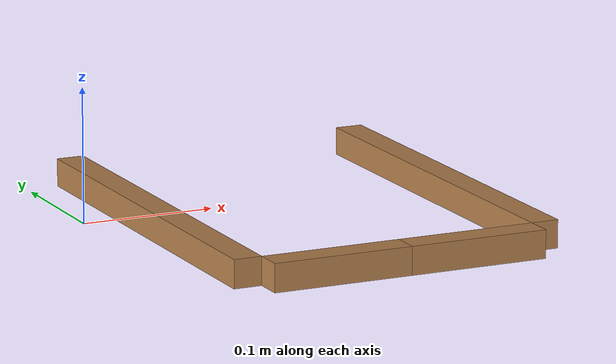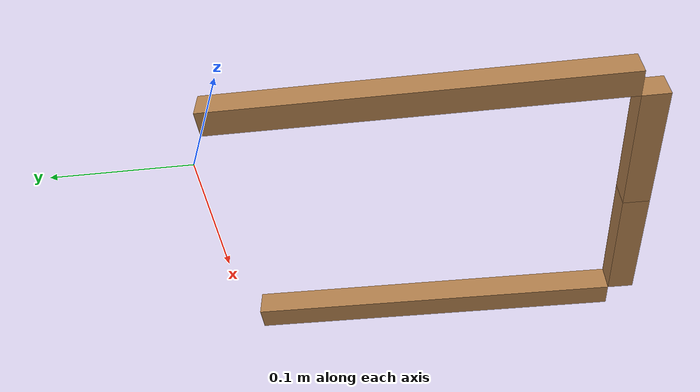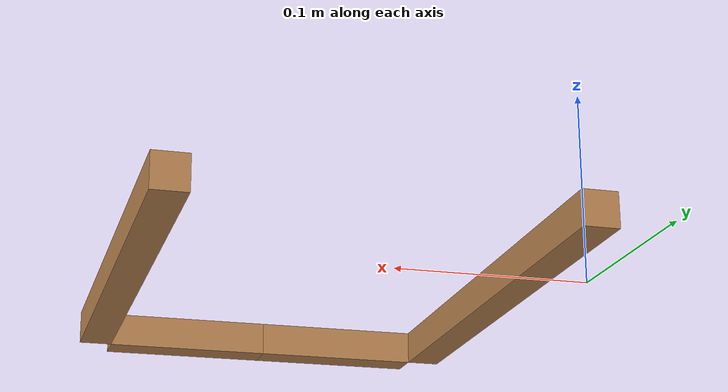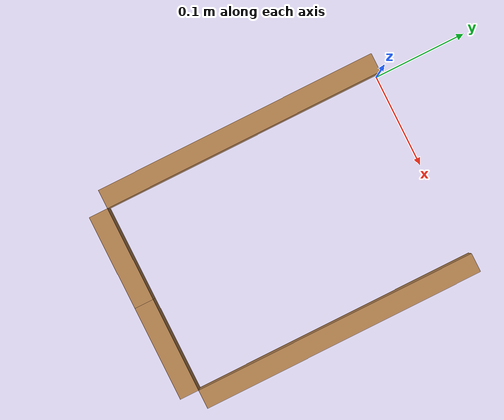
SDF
<?xml version="1.0" ?>
<sdf version="1.5">
  <model name="four_bar_sdf">
    <pose>0 0 0.04  0 0 0</pose>
    <self_collide>true</self_collide>
    <link name="link_AB">
      <pose>-0.01 -0.15000000000000002 0  0 0 0</pose>
      <inertial>
        <mass>0.07200000000000001</mass>
        <inertia>
          <ixx>0.0005424000000000002</ixx>
          <iyy>4.800000000000001e-06</iyy>
          <izz>0.0005424000000000002</izz>
          <ixy>0.0</ixy>
          <ixz>0.0</ixz>
          <iyz>0.0</iyz>
        </inertia>
      </inertial>
      <collision name="boxABCollision">
        <geometry>
          <box>
            <size>0.02 0.30000000000000004 0.02</size>
          </box>
        </geometry>
      </collision>
      <visual name="boxABVisual">
        <geometry>
          <box>
            <size>0.02 0.30000000000000004 0.02</size>
          </box>
        </geometry>
        <material>
          <script>
            <uri>file://media/materials/scripts/gazebo.material</uri>
            <name>Gazebo/Wood</name>
          </script>
        </material>
      </visual>
    </link>
    <link name="link_BE">
      <pose>0.05 -0.31000000000000005 0  0 0 0</pose>
      <inertial>
        <mass>0.024</mass>
        <inertia>
          <ixx>1.6000000000000001e-06</ixx>
          <iyy>2.0800000000000004e-05</iyy>
          <izz>2.0800000000000004e-05</izz>
          <ixy>0.0</ixy>
          <ixz>0.0</ixz>
          <iyz>0.0</iyz>
        </inertia>
      </inertial>
      <collision name="boxBECollision">
        <geometry>
          <box>
            <size>0.1 0.02 0.02</size>
          </box>
        </geometry>
      </collision>
      <visual name="boxBEVisual">
        <geometry>
          <box>
            <size>0.1 0.02 0.02</size>
          </box>
        </geometry>
        <material>
          <script>
            <uri>file://media/materials/scripts/gazebo.material</uri>
            <name>Gazebo/Wood</name>
          </script>
        </material>
      </visual>
    </link>
    <link name="link_EC">
      <pose>0.15000000000000002 -0.31000000000000005 0  0 0 0</pose>
      <inertial>
        <mass>0.024</mass>
        <inertia>
          <ixx>1.6000000000000001e-06</ixx>
          <iyy>2.0800000000000004e-05</iyy>
          <izz>2.0800000000000004e-05</izz>
          <ixy>0.0</ixy>
          <ixz>0.0</ixz>
          <iyz>0.0</iyz>
        </inertia>
      </inertial>
      <collision name="boxECCollision">
        <geometry>
          <box>
            <size>0.1 0.02 0.02</size>
          </box>
        </geometry>
      </collision>
      <visual name="boxECVisual">
        <geometry>
          <box>
            <size>0.1 0.02 0.02</size>
          </box>
        </geometry>
        <material>
          <script>
            <uri>file://media/materials/scripts/gazebo.material</uri>
            <name>Gazebo/Wood</name>
          </script>
        </material>
      </visual>
    </link>
    <link name="link_CD">
      <pose>0.21000000000000002 -0.15000000000000002 0  0 0 0</pose>
      <inertial>
        <mass>0.07200000000000001</mass>
        <inertia>
          <ixx>0.0005424000000000002</ixx>
          <iyy>4.800000000000001e-06</iyy>
          <izz>0.0005424000000000002</izz>
          <ixy>0.0</ixy>
          <ixz>0.0</ixz>
          <iyz>0.0</iyz>
        </inertia>
      </inertial>
      <collision name="boxCDCollision">
        <geometry>
          <box>
            <size>0.02 0.30000000000000004 0.02</size>
          </box>
        </geometry>
      </collision>
      <visual name="boxCDVisual">
        <geometry>
          <box>
            <size>0.02 0.30000000000000004 0.02</size>
          </box>
        </geometry>
        <material>
          <script>
            <uri>file://media/materials/scripts/gazebo.material</uri>
            <name>Gazebo/Wood</name>
          </script>
        </material>
      </visual>
    </link>
    <joint name="joint_A" type="revolute">
      <pose>0.01 0.15000000000000002 0 0 0 0</pose>
      <parent>world</parent>
      <child>link_AB</child>
      <axis>
        <xyz>0 0 1</xyz>
      </axis>
    </joint>
    <joint name="joint_B" type="revolute">
      <pose>-0.05 0.01 0 0 0 0</pose>
      <parent>link_AB</parent>
      <child>link_BE</child>
      <axis>
        <xyz>0 0 1</xyz>
      </axis>
    </joint>
    <joint name="joint_D" type="revolute">
      <pose>-0.01 0.15000000000000002 0 0 0 0</pose>
      <parent>world</parent>
      <child>link_CD</child>
      <axis>
        <xyz>0 0 1</xyz>
      </axis>
    </joint>
    <joint name="joint_C" type="revolute">
      <pose>0.05 0.01 0 0 0 0</pose>
      <parent>link_CD</parent>
      <child>link_EC</child>
      <axis>
        <xyz>0 0 1</xyz>
      </axis>
    </joint>
    <joint name="joint_E" type="fixed">
      <pose>-0.05 0 0 0 0 0</pose>
      <parent>link_BE</parent>
      <child>link_EC</child>
    </joint>
  </model>
</sdf>
